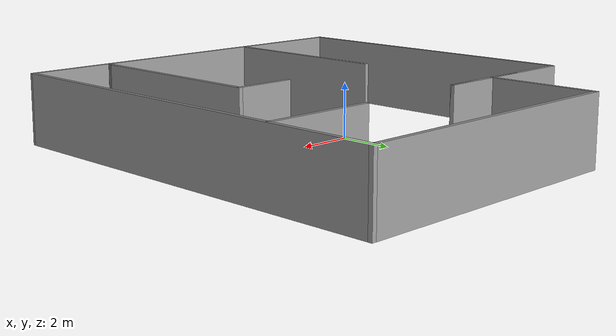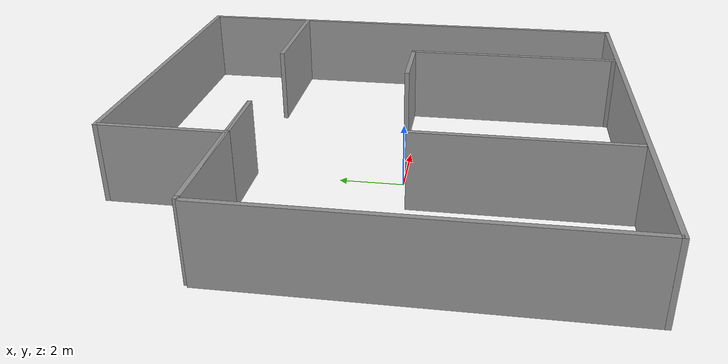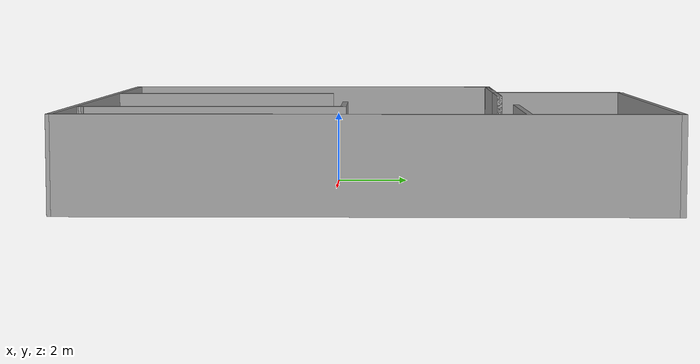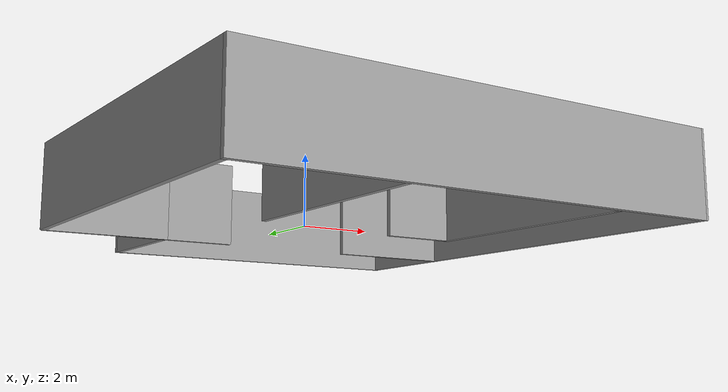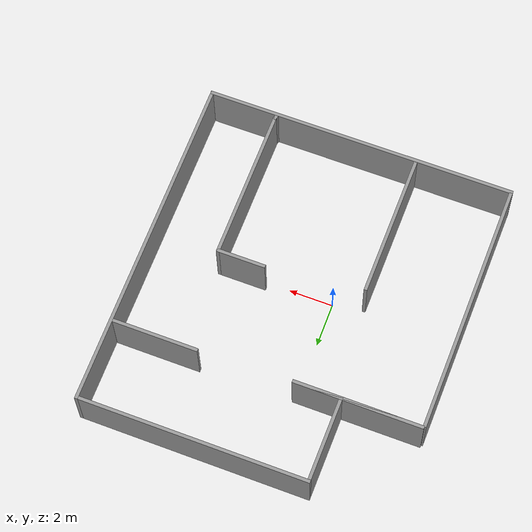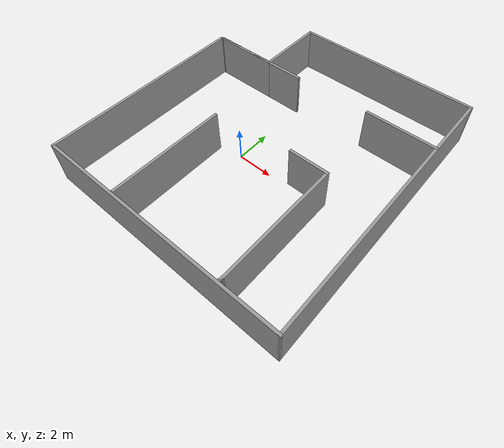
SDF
<?xml version='1.0'?>
<sdf version='1.6'>
  <model name='youtube'>
    <pose frame=''>1.25526 0.888102 0 0 -0 0</pose>
    <link name='Wall_10'>
      <collision name='Wall_10_Collision'>
        <geometry>
          <box>
            <size>4 0.15 2.5</size>
          </box>
        </geometry>
        <pose frame=''>0 0 1.25 0 -0 0</pose>
      </collision>
      <visual name='Wall_10_Visual'>
        <pose frame=''>0 0 1.25 0 -0 0</pose>
        <geometry>
          <box>
            <size>4 0.15 2.5</size>
          </box>
        </geometry>
        <material>
          <script>
            <uri>file://media/materials/scripts/gazebo.material</uri>
            <name>Gazebo/Grey</name>
          </script>
          <ambient>1 1 1 1</ambient>
        </material>
        <meta>
          <layer>0</layer>
        </meta>
      </visual>
      <pose frame=''>-3.34023 5.77022 0 0 -0 -1.5708</pose>
    </link>
    <link name='Wall_11'>
      <collision name='Wall_11_Collision'>
        <geometry>
          <box>
            <size>3.75 0.15 2.5</size>
          </box>
        </geometry>
        <pose frame=''>0 0 1.25 0 -0 0</pose>
      </collision>
      <visual name='Wall_11_Visual'>
        <pose frame=''>0 0 1.25 0 -0 0</pose>
        <geometry>
          <box>
            <size>3.75 0.15 2.5</size>
          </box>
        </geometry>
        <material>
          <script>
            <uri>file://media/materials/scripts/gazebo.material</uri>
            <name>Gazebo/Grey</name>
          </script>
          <ambient>1 1 1 1</ambient>
        </material>
        <meta>
          <layer>0</layer>
        </meta>
      </visual>
      <pose frame=''>-5.14023 3.84522 0 0 -0 3.14159</pose>
    </link>
    <link name='Wall_12'>
      <collision name='Wall_12_Collision'>
        <geometry>
          <box>
            <size>0.15 0.15 2.5</size>
          </box>
        </geometry>
        <pose frame=''>0 0 1.25 0 -0 0</pose>
      </collision>
      <visual name='Wall_12_Visual'>
        <pose frame=''>0 0 1.25 0 -0 0</pose>
        <geometry>
          <box>
            <size>0.15 0.15 2.5</size>
          </box>
        </geometry>
        <material>
          <script>
            <uri>file://media/materials/scripts/gazebo.material</uri>
            <name>Gazebo/Grey</name>
          </script>
          <ambient>1 1 1 1</ambient>
        </material>
        <meta>
          <layer>0</layer>
        </meta>
      </visual>
      <pose frame=''>-6.94023 3.84522 0 0 -0 0</pose>
    </link>
    <link name='Wall_14'>
      <collision name='Wall_14_Collision'>
        <geometry>
          <box>
            <size>2.25 0.15 2.5</size>
          </box>
        </geometry>
        <pose frame=''>0 0 1.25 0 -0 0</pose>
      </collision>
      <visual name='Wall_14_Visual'>
        <pose frame=''>0 0 1.25 0 -0 0</pose>
        <geometry>
          <box>
            <size>2.25 0.15 2.5</size>
          </box>
        </geometry>
        <material>
          <script>
            <uri>file://media/materials/scripts/gazebo.material</uri>
            <name>Gazebo/Grey</name>
          </script>
          <ambient>1 1 1 1</ambient>
        </material>
        <meta>
          <layer>0</layer>
        </meta>
      </visual>
      <pose frame=''>-2.29023 3.84522 0 0 -0 0</pose>
    </link>
    <link name='Wall_15'>
      <collision name='Wall_15_Collision'>
        <geometry>
          <box>
            <size>5.85 0.15 2.5</size>
          </box>
        </geometry>
        <pose frame=''>0 0 1.25 0 -0 0</pose>
      </collision>
      <visual name='Wall_15_Visual'>
        <pose frame=''>0 0 1.25 0 -0 0</pose>
        <geometry>
          <box>
            <size>5.85 0.15 2.5</size>
          </box>
        </geometry>
        <material>
          <script>
            <uri>file://media/materials/scripts/gazebo.material</uri>
            <name>Gazebo/Grey</name>
          </script>
          <ambient>1 1 1 1</ambient>
        </material>
        <meta>
          <layer>0</layer>
        </meta>
      </visual>
      <pose frame=''>-4.09023 3.84522 0 0 -0 3.14159</pose>
    </link>
    <link name='Wall_17'>
      <collision name='Wall_17_Collision'>
        <geometry>
          <box>
            <size>4 0.15 2.5</size>
          </box>
        </geometry>
        <pose frame=''>0 0 1.25 0 -0 0</pose>
      </collision>
      <visual name='Wall_17_Visual'>
        <pose frame=''>0 0 1.25 0 -0 0</pose>
        <geometry>
          <box>
            <size>4 0.15 2.5</size>
          </box>
        </geometry>
        <material>
          <script>
            <uri>file://media/materials/scripts/gazebo.material</uri>
            <name>Gazebo/Grey</name>
          </script>
          <ambient>1 1 1 1</ambient>
        </material>
        <meta>
          <layer>0</layer>
        </meta>
      </visual>
      <pose frame=''>5.05247 3.97681 0 0 -0 0</pose>
    </link>
    <link name='Wall_19'>
      <collision name='Wall_19_Collision'>
        <geometry>
          <box>
            <size>6.5 0.15 2.5</size>
          </box>
        </geometry>
        <pose frame=''>0 0 1.25 0 -0 0</pose>
      </collision>
      <visual name='Wall_19_Visual'>
        <pose frame=''>0 0 1.25 0 -0 0</pose>
        <geometry>
          <box>
            <size>6.5 0.15 2.5</size>
          </box>
        </geometry>
        <material>
          <script>
            <uri>file://media/materials/scripts/gazebo.material</uri>
            <name>Gazebo/Grey</name>
          </script>
          <ambient>1 1 1 1</ambient>
        </material>
        <meta>
          <layer>0</layer>
        </meta>
      </visual>
      <pose frame=''>-2.62501 -4.34726 0 0 -0 -1.5708</pose>
    </link>
    <link name='Wall_21'>
      <collision name='Wall_21_Collision'>
        <geometry>
          <box>
            <size>2.25 0.15 2.5</size>
          </box>
        </geometry>
        <pose frame=''>0 0 1.25 0 -0 0</pose>
      </collision>
      <visual name='Wall_21_Visual'>
        <pose frame=''>0 0 1.25 0 -0 0</pose>
        <geometry>
          <box>
            <size>2.25 0.15 2.5</size>
          </box>
        </geometry>
        <material>
          <script>
            <uri>file://media/materials/scripts/gazebo.material</uri>
            <name>Gazebo/Grey</name>
          </script>
          <ambient>1 1 1 1</ambient>
        </material>
        <meta>
          <layer>0</layer>
        </meta>
      </visual>
      <pose frame=''>2.8902 -0.609084 0 0 -0 0</pose>
    </link>
    <link name='Wall_22'>
      <collision name='Wall_22_Collision'>
        <geometry>
          <box>
            <size>7 0.15 2.5</size>
          </box>
        </geometry>
        <pose frame=''>0 0 1.25 0 -0 0</pose>
      </collision>
      <visual name='Wall_22_Visual'>
        <pose frame=''>0 0 1.25 0 -0 0</pose>
        <geometry>
          <box>
            <size>7 0.15 2.5</size>
          </box>
        </geometry>
        <material>
          <script>
            <uri>file://media/materials/scripts/gazebo.material</uri>
            <name>Gazebo/Grey</name>
          </script>
          <ambient>1 1 1 1</ambient>
        </material>
        <meta>
          <layer>0</layer>
        </meta>
      </visual>
      <pose frame=''>3.9402 -4.03408 0 0 -0 -1.5708</pose>
    </link>
    <link name='Wall_23'>
      <collision name='Wall_23_Collision'>
        <geometry>
          <box>
            <size>0.25 0.15 2.5</size>
          </box>
        </geometry>
        <pose frame=''>0 0 1.25 0 -0 0</pose>
      </collision>
      <visual name='Wall_23_Visual'>
        <pose frame=''>0 0 1.25 0 -0 0</pose>
        <geometry>
          <box>
            <size>0.25 0.15 2.5</size>
          </box>
        </geometry>
        <material>
          <script>
            <uri>file://media/materials/scripts/gazebo.material</uri>
            <name>Gazebo/Grey</name>
          </script>
          <ambient>1 1 1 1</ambient>
        </material>
        <meta>
          <layer>0</layer>
        </meta>
      </visual>
      <pose frame=''>3.92726 -7.50738 0 0 -0 -1.8326</pose>
    </link>
    <link name='Wall_6'>
      <collision name='Wall_6_Collision'>
        <geometry>
          <box>
            <size>11.5 0.15 2.5</size>
          </box>
        </geometry>
        <pose frame=''>0 0 1.25 0 -0 0</pose>
      </collision>
      <visual name='Wall_6_Visual'>
        <pose frame=''>0 0 1.25 0 -0 0</pose>
        <geometry>
          <box>
            <size>11.5 0.15 2.5</size>
          </box>
        </geometry>
        <material>
          <script>
            <uri>file://media/materials/scripts/gazebo.material</uri>
            <name>Gazebo/Grey</name>
          </script>
          <ambient>1 1 1 1</ambient>
        </material>
        <meta>
          <layer>0</layer>
        </meta>
      </visual>
      <pose frame=''>-7.00977 -1.93955 0 0 -0 -1.5708</pose>
    </link>
    <link name='Wall_7'>
      <collision name='Wall_7_Collision'>
        <geometry>
          <box>
            <size>14.1698 0.15 2.5</size>
          </box>
        </geometry>
        <pose frame=''>0 0 1.25 0 -0 0</pose>
      </collision>
      <visual name='Wall_7_Visual'>
        <pose frame=''>0 0 1.25 0 -0 0</pose>
        <geometry>
          <box>
            <size>14.1698 0.15 2.5</size>
          </box>
        </geometry>
        <material>
          <script>
            <uri>file://media/materials/scripts/gazebo.material</uri>
            <name>Gazebo/Grey</name>
          </script>
          <ambient>1 1 1 1</ambient>
        </material>
        <meta>
          <layer>0</layer>
        </meta>
      </visual>
      <pose frame=''>0 -7.67489 0 0 -0 0.002869</pose>
    </link>
    <link name='Wall_8'>
      <collision name='Wall_8_Collision'>
        <geometry>
          <box>
            <size>15.5 0.15 2.5</size>
          </box>
        </geometry>
        <pose frame=''>0 0 1.25 0 -0 0</pose>
      </collision>
      <visual name='Wall_8_Visual'>
        <pose frame=''>0 0 1.25 0 -0 0</pose>
        <geometry>
          <box>
            <size>15.5 0.15 2.5</size>
          </box>
        </geometry>
        <material>
          <script>
            <uri>file://media/materials/scripts/gazebo.material</uri>
            <name>Gazebo/Grey</name>
          </script>
          <ambient>1 1 1 1</ambient>
        </material>
        <meta>
          <layer>0</layer>
        </meta>
      </visual>
      <pose frame=''>7.00977 0.020221 0 0 -0 1.5708</pose>
    </link>
    <link name='Wall_9'>
      <collision name='Wall_9_Collision'>
        <geometry>
          <box>
            <size>10.5 0.15 2.5</size>
          </box>
        </geometry>
        <pose frame=''>0 0 1.25 0 -0 0</pose>
      </collision>
      <visual name='Wall_9_Visual'>
        <pose frame=''>0 0 1.25 0 -0 0</pose>
        <geometry>
          <box>
            <size>10.5 0.15 2.5</size>
          </box>
        </geometry>
        <material>
          <script>
            <uri>file://media/materials/scripts/gazebo.material</uri>
            <name>Gazebo/Grey</name>
          </script>
          <ambient>1 1 1 1</ambient>
        </material>
        <meta>
          <layer>0</layer>
        </meta>
      </visual>
      <pose frame=''>1.83477 7.69522 0 0 -0 3.14159</pose>
    </link>
    <static>1</static>
  </model>
</sdf>
